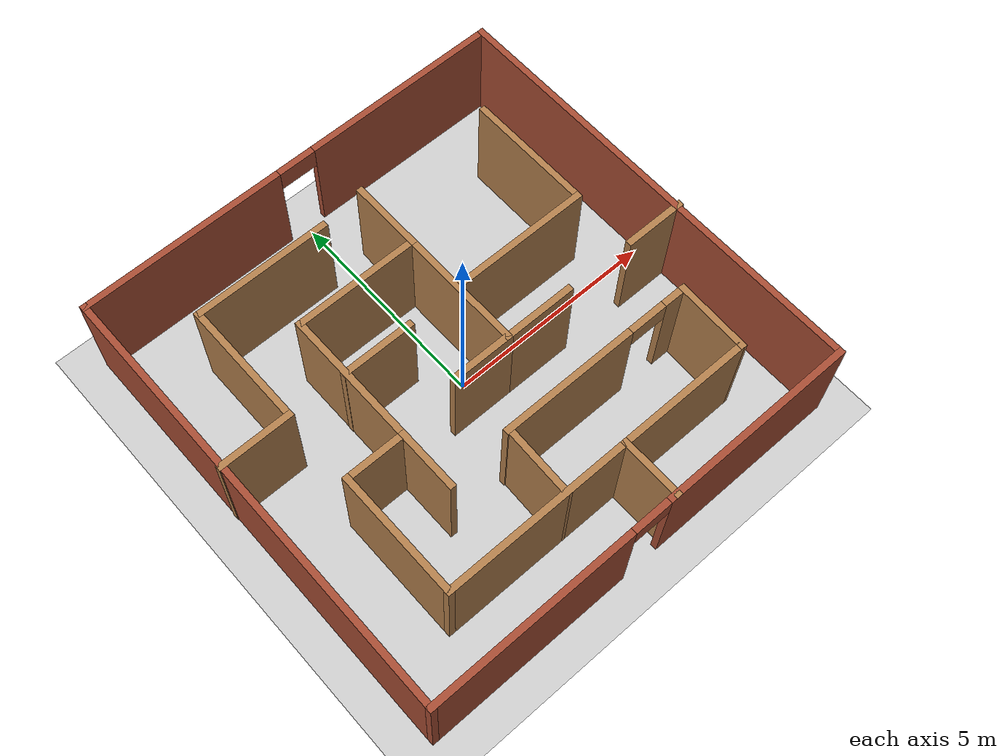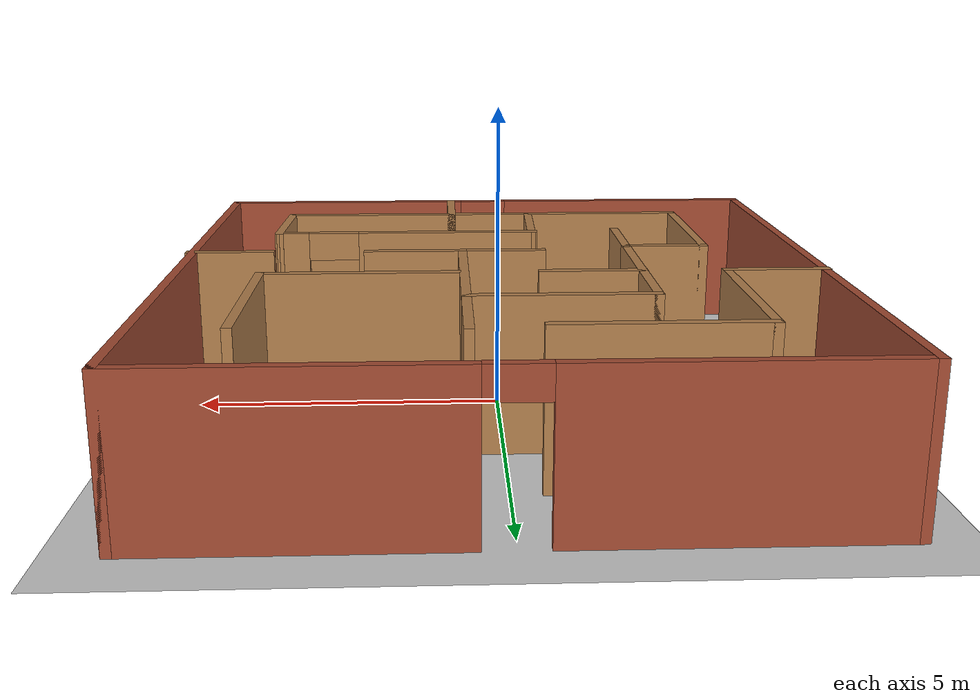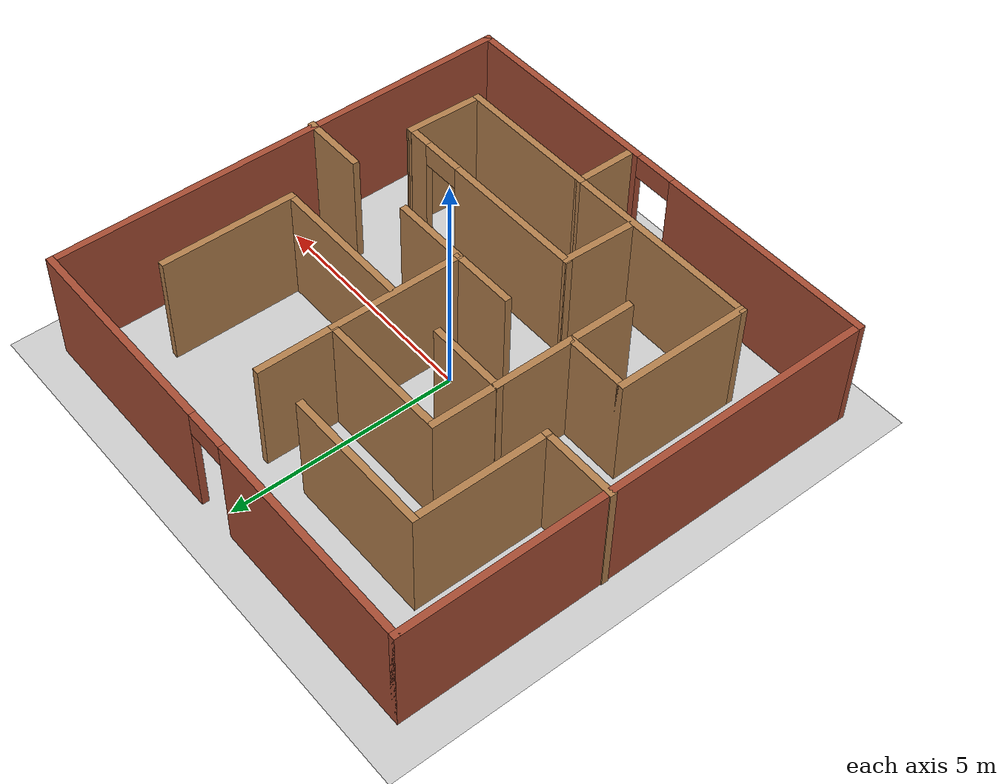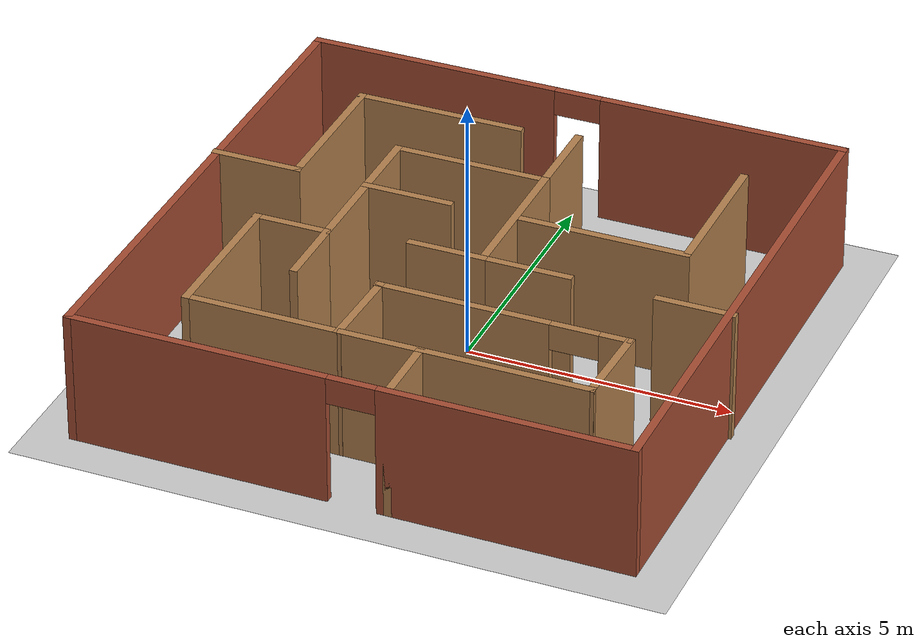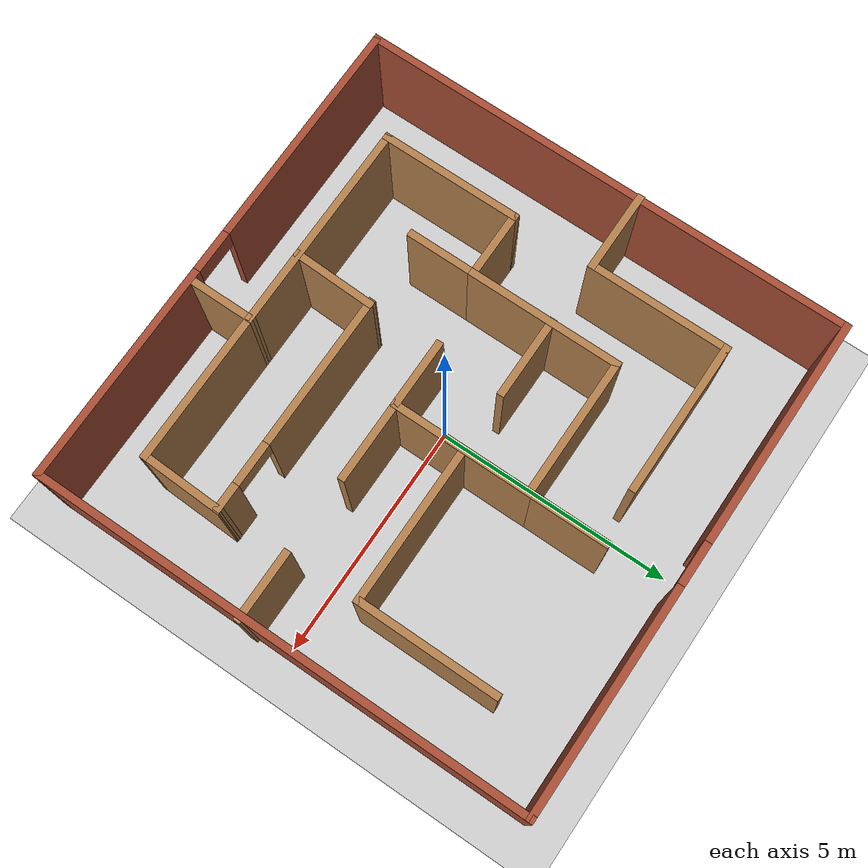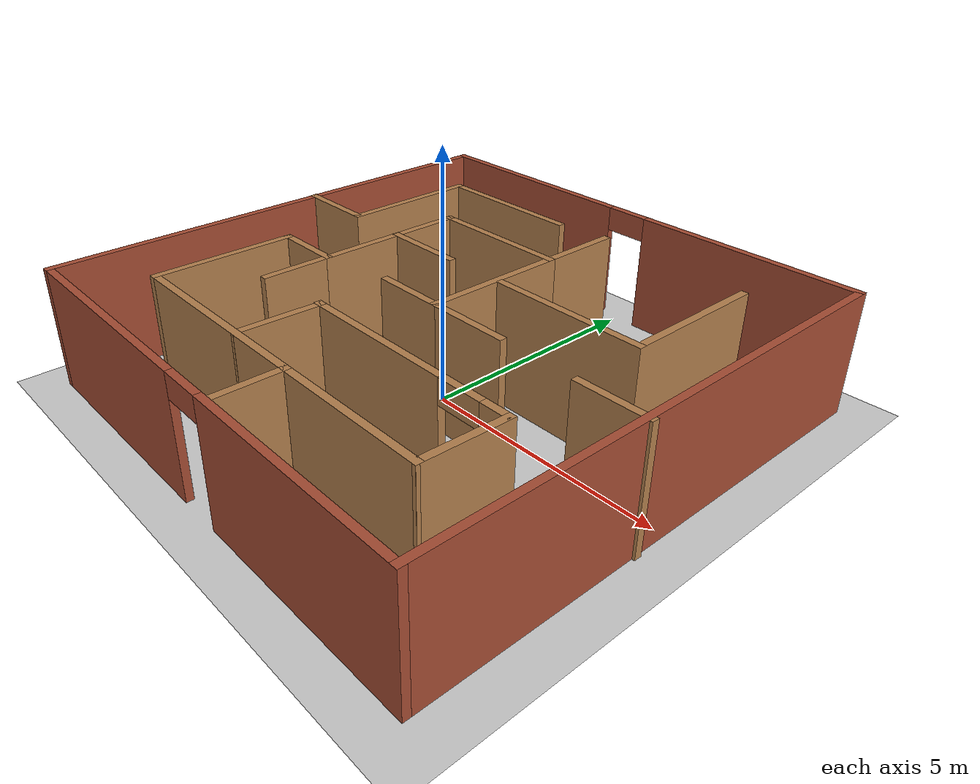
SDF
<sdf version="1.7">
 <world name="default">
  <light name="sun" type="directional">
   <pose>0 0 10 0 -0 0</pose>
   <diffuse>0.8 0.8 0.8 1</diffuse>
   <specular>0.2 0.2 0.2 1</specular>
   <attenuation>
    <range>1000</range>
    <constant>0.9</constant>
    <linear>0.01</linear>
    <quadratic>0.001</quadratic>
   </attenuation>
   <direction>-0.5 0.1 -0.9</direction>
   <spot><inner_angle>0</inner_angle><outer_angle>0</outer_angle><falloff>0</falloff></spot>
  </light>
  <model name="ground_plane">
   <static>1</static>
   <link name="link">
    <collision name="collision">
     <geometry><plane><normal>0 0 1</normal><size>100 100</size></plane></geometry>
     <surface><friction><ode><mu>100</mu><mu2>50</mu2></ode></friction></surface>
    </collision>
    <visual name="visual">
     <cast_shadows>0</cast_shadows>
     <geometry><plane><normal>0 0 1</normal><size>100 100</size></plane></geometry>
     <material>
      <script><uri>file://media/materials/scripts/gazebo.material</uri><name>Gazebo/Grey</name></script>
     </material>
    </visual>
   </link>
  </model>
  <gravity>0 0 -9.8</gravity>
  <magnetic_field>6e-06 2.3e-05 -4.2e-05</magnetic_field>
  <atmosphere type="adiabatic"/>
  <physics type="ode">
   <max_step_size>0.001</max_step_size>
   <real_time_factor>1</real_time_factor>
   <real_time_update_rate>1000</real_time_update_rate>
  </physics>
  <scene><ambient>0.4 0.4 0.4 1</ambient><background>0.7 0.7 0.7 1</background><shadows>1</shadows></scene>
  <audio><device>default</device></audio>
  <spherical_coordinates>
   <surface_model>EARTH_WGS84</surface_model>
   <latitude_deg>0</latitude_deg>
   <longitude_deg>0</longitude_deg>
   <elevation>0</elevation>
   <heading_deg>0</heading_deg>
  </spherical_coordinates>
  <model name="myMaze">
   <pose>-0.018261 0.051252 0 0 -0 0</pose>
   <link name="Wall_10">
    <pose>-0.016524 -5.175 0 0 -0 3.14159</pose>
    <visual name="Wall_10_Visual_0">
     <pose>-2.89914 0 1.25 0 -0 0</pose>
     <geometry><box><size>4.70171 0.15 2.5</size></box></geometry>
     <material>
      <script><uri>file://media/materials/scripts/gazebo.material</uri><name>Gazebo/Bricks</name></script>
      <ambient>1 1 1 1</ambient>
     </material>
     <meta><layer>0</layer></meta>
    </visual>
    <collision name="Wall_10_Collision_0">
     <geometry><box><size>4.70171 0.15 2.5</size></box></geometry>
     <pose>-2.89914 0 1.25 0 -0 0</pose>
    </collision>
    <visual name="Wall_10_Visual_1">
     <pose>2.80086 0 1.25 0 -0 0</pose>
     <geometry><box><size>4.89829 0.15 2.5</size></box></geometry>
     <material>
      <script><uri>file://media/materials/scripts/gazebo.material</uri><name>Gazebo/Bricks</name></script>
      <ambient>1 1 1 1</ambient>
     </material>
     <meta><layer>0</layer></meta>
    </visual>
    <collision name="Wall_10_Collision_1">
     <geometry><box><size>4.89829 0.15 2.5</size></box></geometry>
     <pose>2.80086 0 1.25 0 -0 0</pose>
    </collision>
    <visual name="Wall_10_Visual_2">
     <pose>-0.098287 0 2.25 0 -0 0</pose>
     <geometry><box><size>0.9 0.15 0.5</size></box></geometry>
     <material>
      <script><uri>file://media/materials/scripts/gazebo.material</uri><name>Gazebo/Bricks</name></script>
      <ambient>1 1 1 1</ambient>
     </material>
     <meta><layer>0</layer></meta>
    </visual>
    <collision name="Wall_10_Collision_2">
     <geometry><box><size>0.9 0.15 0.5</size></box></geometry>
     <pose>-0.098287 0 2.25 0 -0 0</pose>
    </collision>
   </link>
   <link name="Wall_11">
    <collision name="Wall_11_Collision">
     <geometry><box><size>10.5 0.15 2.5</size></box></geometry>
     <pose>0 0 1.25 0 -0 0</pose>
    </collision>
    <visual name="Wall_11_Visual">
     <pose>0 0 1.25 0 -0 0</pose>
     <geometry><box><size>10.5 0.15 2.5</size></box></geometry>
     <material>
      <script><uri>file://media/materials/scripts/gazebo.material</uri><name>Gazebo/Bricks</name></script>
      <ambient>1 1 1 1</ambient>
     </material>
     <meta><layer>0</layer></meta>
    </visual>
    <pose>-5.19152 0 0 0 -0 1.5708</pose>
   </link>
   <link name="Wall_12">
    <pose>-0.016524 5.175 0 0 -0 0</pose>
    <visual name="Wall_12_Visual_0">
     <pose>-2.82746 0 1.25 0 -0 0</pose>
     <geometry><box><size>4.84509 0.15 2.5</size></box></geometry>
     <material>
      <script><uri>file://media/materials/scripts/gazebo.material</uri><name>Gazebo/Bricks</name></script>
      <ambient>1 1 1 1</ambient>
     </material>
     <meta><layer>0</layer></meta>
    </visual>
    <collision name="Wall_12_Collision_0">
     <geometry><box><size>4.84509 0.15 2.5</size></box></geometry>
     <pose>-2.82746 0 1.25 0 -0 0</pose>
    </collision>
    <visual name="Wall_12_Visual_1">
     <pose>2.87254 0 1.25 0 -0 0</pose>
     <geometry><box><size>4.75491 0.15 2.5</size></box></geometry>
     <material>
      <script><uri>file://media/materials/scripts/gazebo.material</uri><name>Gazebo/Bricks</name></script>
      <ambient>1 1 1 1</ambient>
     </material>
     <meta><layer>0</layer></meta>
    </visual>
    <collision name="Wall_12_Collision_1">
     <geometry><box><size>4.75491 0.15 2.5</size></box></geometry>
     <pose>2.87254 0 1.25 0 -0 0</pose>
    </collision>
    <visual name="Wall_12_Visual_2">
     <pose>0.045087 0 2.25 0 -0 0</pose>
     <geometry><box><size>0.9 0.15 0.5</size></box></geometry>
     <material>
      <script><uri>file://media/materials/scripts/gazebo.material</uri><name>Gazebo/Bricks</name></script>
      <ambient>1 1 1 1</ambient>
     </material>
     <meta><layer>0</layer></meta>
    </visual>
    <collision name="Wall_12_Collision_2">
     <geometry><box><size>0.9 0.15 0.5</size></box></geometry>
     <pose>0.045087 0 2.25 0 -0 0</pose>
    </collision>
   </link>
   <link name="Wall_13">
    <collision name="Wall_13_Collision">
     <geometry><box><size>10.5 0.15 2.5</size></box></geometry>
     <pose>0 0 1.25 0 -0 0</pose>
    </collision>
    <visual name="Wall_13_Visual">
     <pose>0 0 1.25 0 -0 0</pose>
     <geometry><box><size>10.5 0.15 2.5</size></box></geometry>
     <material>
      <script><uri>file://media/materials/scripts/gazebo.material</uri><name>Gazebo/Bricks</name></script>
      <ambient>1 1 1 1</ambient>
     </material>
     <meta><layer>0</layer></meta>
    </visual>
    <pose>5.15848 0 0 0 -0 -1.5708</pose>
   </link>
   <link name="Wall_15">
    <collision name="Wall_15_Collision">
     <geometry><box><size>1.5 0.15 2.5</size></box></geometry>
     <pose>0 0 1.25 0 -0 0</pose>
    </collision>
    <visual name="Wall_15_Visual">
     <pose>0 0 1.25 0 -0 0</pose>
     <geometry><box><size>1.5 0.15 2.5</size></box></geometry>
     <material>
      <script><uri>file://media/materials/scripts/gazebo.material</uri><name>Gazebo/Wood</name></script>
      <ambient>1 1 1 1</ambient>
     </material>
     <meta><layer>0</layer></meta>
    </visual>
    <pose>0.74053 -4.5 0 0 -0 1.5708</pose>
   </link>
   <link name="Wall_16">
    <collision name="Wall_16_Collision">
     <geometry><box><size>3.25 0.15 2.5</size></box></geometry>
     <pose>0 0 1.25 0 -0 0</pose>
    </collision>
    <visual name="Wall_16_Visual">
     <pose>0 0 1.25 0 -0 0</pose>
     <geometry><box><size>3.25 0.15 2.5</size></box></geometry>
     <material>
      <script><uri>file://media/materials/scripts/gazebo.material</uri><name>Gazebo/Wood</name></script>
      <ambient>1 1 1 1</ambient>
     </material>
     <meta><layer>0</layer></meta>
    </visual>
    <pose>2.29053 -3.825 0 0 -0 0</pose>
   </link>
   <link name="Wall_17">
    <collision name="Wall_17_Collision">
     <geometry><box><size>1.77747 0.15 2.5</size></box></geometry>
     <pose>0 0 1.25 0 -0 0</pose>
    </collision>
    <visual name="Wall_17_Visual">
     <pose>0 0 1.25 0 -0 0</pose>
     <geometry><box><size>1.77747 0.15 2.5</size></box></geometry>
     <material>
      <script><uri>file://media/materials/scripts/gazebo.material</uri><name>Gazebo/Wood</name></script>
      <ambient>1 1 1 1</ambient>
     </material>
     <meta><layer>0</layer></meta>
    </visual>
    <pose>3.86713 -3.0117 0 0 -0 1.5381</pose>
   </link>
   <link name="Wall_18">
    <pose>1.56713 -2.1984 0 0 -0 3.14159</pose>
    <visual name="Wall_18_Visual_0">
     <pose>-2.07963 0 1.25 0 -0 0</pose>
     <geometry><box><size>0.590746 0.15 2.5</size></box></geometry>
     <material>
      <script><uri>file://media/materials/scripts/gazebo.material</uri><name>Gazebo/Wood</name></script>
      <ambient>1 1 1 1</ambient>
     </material>
     <meta><layer>0</layer></meta>
    </visual>
    <collision name="Wall_18_Collision_0">
     <geometry><box><size>0.590746 0.15 2.5</size></box></geometry>
     <pose>-2.07963 0 1.25 0 -0 0</pose>
    </collision>
    <visual name="Wall_18_Visual_1">
     <pose>0.745373 0 1.25 0 -0 0</pose>
     <geometry><box><size>3.25925 0.15 2.5</size></box></geometry>
     <material>
      <script><uri>file://media/materials/scripts/gazebo.material</uri><name>Gazebo/Wood</name></script>
      <ambient>1 1 1 1</ambient>
     </material>
     <meta><layer>0</layer></meta>
    </visual>
    <collision name="Wall_18_Collision_1">
     <geometry><box><size>3.25925 0.15 2.5</size></box></geometry>
     <pose>0.745373 0 1.25 0 -0 0</pose>
    </collision>
    <visual name="Wall_18_Visual_2">
     <pose>-1.33425 0 2.25 0 -0 0</pose>
     <geometry><box><size>0.9 0.15 0.5</size></box></geometry>
     <material>
      <script><uri>file://media/materials/scripts/gazebo.material</uri><name>Gazebo/Wood</name></script>
      <ambient>1 1 1 1</ambient>
     </material>
     <meta><layer>0</layer></meta>
    </visual>
    <collision name="Wall_18_Collision_2">
     <geometry><box><size>0.9 0.15 0.5</size></box></geometry>
     <pose>-1.33425 0 2.25 0 -0 0</pose>
    </collision>
   </link>
   <link name="Wall_20">
    <collision name="Wall_20_Collision">
     <geometry><box><size>4.5 0.15 2.5</size></box></geometry>
     <pose>0 0 1.25 0 -0 0</pose>
    </collision>
    <visual name="Wall_20_Visual">
     <pose>0 0 1.25 0 -0 0</pose>
     <geometry><box><size>4.5 0.15 2.5</size></box></geometry>
     <material>
      <script><uri>file://media/materials/scripts/gazebo.material</uri><name>Gazebo/Wood</name></script>
      <ambient>1 1 1 1</ambient>
     </material>
     <meta><layer>0</layer></meta>
    </visual>
    <pose>-1.43447 -3.825 0 0 -0 3.14159</pose>
   </link>
   <link name="Wall_21">
    <collision name="Wall_21_Collision">
     <geometry><box><size>3 0.15 2.5</size></box></geometry>
     <pose>0 0 1.25 0 -0 0</pose>
    </collision>
    <visual name="Wall_21_Visual">
     <pose>0 0 1.25 0 -0 0</pose>
     <geometry><box><size>3 0.15 2.5</size></box></geometry>
     <material>
      <script><uri>file://media/materials/scripts/gazebo.material</uri><name>Gazebo/Wood</name></script>
      <ambient>1 1 1 1</ambient>
     </material>
     <meta><layer>0</layer></meta>
    </visual>
    <pose>-3.60947 -2.4 0 0 -0 1.5708</pose>
   </link>
   <link name="Wall_22">
    <collision name="Wall_22_Collision">
     <geometry><box><size>1.5 0.15 2.5</size></box></geometry>
     <pose>0 0 1.25 0 -0 0</pose>
    </collision>
    <visual name="Wall_22_Visual">
     <pose>0 0 1.25 0 -0 0</pose>
     <geometry><box><size>1.5 0.15 2.5</size></box></geometry>
     <material>
      <script><uri>file://media/materials/scripts/gazebo.material</uri><name>Gazebo/Wood</name></script>
      <ambient>1 1 1 1</ambient>
     </material>
     <meta><layer>0</layer></meta>
    </visual>
    <pose>-2.93447 -0.975 0 0 -0 0</pose>
   </link>
   <link name="Wall_23">
    <collision name="Wall_23_Collision">
     <geometry><box><size>1.5 0.15 2.5</size></box></geometry>
     <pose>0 0 1.25 0 -0 0</pose>
    </collision>
    <visual name="Wall_23_Visual">
     <pose>0 0 1.25 0 -0 0</pose>
     <geometry><box><size>1.5 0.15 2.5</size></box></geometry>
     <material>
      <script><uri>file://media/materials/scripts/gazebo.material</uri><name>Gazebo/Wood</name></script>
      <ambient>1 1 1 1</ambient>
     </material>
     <meta><layer>0</layer></meta>
    </visual>
    <pose>-2.25947 -1.65 0 0 -0 -1.5708</pose>
   </link>
   <link name="Wall_25">
    <collision name="Wall_25_Collision">
     <geometry><box><size>1.77747 0.15 2.5</size></box></geometry>
     <pose>0 0 1.25 0 -0 0</pose>
    </collision>
    <visual name="Wall_25_Visual">
     <pose>0 0 1.25 0 -0 0</pose>
     <geometry><box><size>1.77747 0.15 2.5</size></box></geometry>
     <material>
      <script><uri>file://media/materials/scripts/gazebo.material</uri><name>Gazebo/Wood</name></script>
      <ambient>1 1 1 1</ambient>
     </material>
     <meta><layer>0</layer></meta>
    </visual>
    <pose>-0.73287 -3.0117 0 0 -0 -1.60349</pose>
   </link>
   <link name="Wall_27">
    <collision name="Wall_27_Collision">
     <geometry><box><size>3.25 0.15 2.5</size></box></geometry>
     <pose>0 0 1.25 0 -0 0</pose>
    </collision>
    <visual name="Wall_27_Visual">
     <pose>0 0 1.25 0 -0 0</pose>
     <geometry><box><size>3.25 0.15 2.5</size></box></geometry>
     <material>
      <script><uri>file://media/materials/scripts/gazebo.material</uri><name>Gazebo/Wood</name></script>
      <ambient>1 1 1 1</ambient>
     </material>
     <meta><layer>0</layer></meta>
    </visual>
    <pose>-2.25947 0.575 0 0 -0 1.5708</pose>
   </link>
   <link name="Wall_28">
    <collision name="Wall_28_Collision">
     <geometry><box><size>3 0.15 2.5</size></box></geometry>
     <pose>0 0 1.25 0 -0 0</pose>
    </collision>
    <visual name="Wall_28_Visual">
     <pose>0 0 1.25 0 -0 0</pose>
     <geometry><box><size>3 0.15 2.5</size></box></geometry>
     <material>
      <script><uri>file://media/materials/scripts/gazebo.material</uri><name>Gazebo/Wood</name></script>
      <ambient>1 1 1 1</ambient>
     </material>
     <meta><layer>0</layer></meta>
    </visual>
    <pose>-0.83447 2.125 0 0 -0 0</pose>
   </link>
   <link name="Wall_29">
    <collision name="Wall_29_Collision">
     <geometry><box><size>1.75 0.15 2.5</size></box></geometry>
     <pose>0 0 1.25 0 -0 0</pose>
    </collision>
    <visual name="Wall_29_Visual">
     <pose>0 0 1.25 0 -0 0</pose>
     <geometry><box><size>1.75 0.15 2.5</size></box></geometry>
     <material>
      <script><uri>file://media/materials/scripts/gazebo.material</uri><name>Gazebo/Wood</name></script>
      <ambient>1 1 1 1</ambient>
     </material>
     <meta><layer>0</layer></meta>
    </visual>
    <pose>0.59053 2.925 0 0 -0 1.5708</pose>
   </link>
   <link name="Wall_31">
    <collision name="Wall_31_Collision">
     <geometry><box><size>3 0.15 2.5</size></box></geometry>
     <pose>0 0 1.25 0 -0 0</pose>
    </collision>
    <visual name="Wall_31_Visual">
     <pose>0 0 1.25 0 -0 0</pose>
     <geometry><box><size>3 0.15 2.5</size></box></geometry>
     <material>
      <script><uri>file://media/materials/scripts/gazebo.material</uri><name>Gazebo/Wood</name></script>
      <ambient>1 1 1 1</ambient>
     </material>
     <meta><layer>0</layer></meta>
    </visual>
    <pose>0.59053 0.7 0 0 -0 -1.5708</pose>
   </link>
   <link name="Wall_32">
    <collision name="Wall_32_Collision">
     <geometry><box><size>1.5 0.15 2.5</size></box></geometry>
     <pose>0 0 1.25 0 -0 0</pose>
    </collision>
    <visual name="Wall_32_Visual">
     <pose>0 0 1.25 0 -0 0</pose>
     <geometry><box><size>1.5 0.15 2.5</size></box></geometry>
     <material>
      <script><uri>file://media/materials/scripts/gazebo.material</uri><name>Gazebo/Wood</name></script>
      <ambient>1 1 1 1</ambient>
     </material>
     <meta><layer>0</layer></meta>
    </visual>
    <pose>-0.08447 -0.725 0 0 -0 3.14159</pose>
   </link>
   <link name="Wall_34">
    <collision name="Wall_34_Collision">
     <geometry><box><size>1.75 0.15 2.5</size></box></geometry>
     <pose>0 0 1.25 0 -0 0</pose>
    </collision>
    <visual name="Wall_34_Visual">
     <pose>0 0 1.25 0 -0 0</pose>
     <geometry><box><size>1.75 0.15 2.5</size></box></geometry>
     <material>
      <script><uri>file://media/materials/scripts/gazebo.material</uri><name>Gazebo/Wood</name></script>
      <ambient>1 1 1 1</ambient>
     </material>
     <meta><layer>0</layer></meta>
    </visual>
    <pose>-1.46645 0.723305 0 0 -0 0</pose>
   </link>
   <link name="Wall_36">
    <collision name="Wall_36_Collision">
     <geometry><box><size>3.25 0.15 2.5</size></box></geometry>
     <pose>0 0 1.25 0 -0 0</pose>
    </collision>
    <visual name="Wall_36_Visual">
     <pose>0 0 1.25 0 -0 0</pose>
     <geometry><box><size>3.25 0.15 2.5</size></box></geometry>
     <material>
      <script><uri>file://media/materials/scripts/gazebo.material</uri><name>Gazebo/Wood</name></script>
      <ambient>1 1 1 1</ambient>
     </material>
     <meta><layer>0</layer></meta>
    </visual>
    <pose>2.2674 0.746436 0 0 -0 0</pose>
   </link>
   <link name="Wall_37">
    <collision name="Wall_37_Collision">
     <geometry><box><size>3 0.15 2.5</size></box></geometry>
     <pose>0 0 1.25 0 -0 0</pose>
    </collision>
    <visual name="Wall_37_Visual">
     <pose>0 0 1.25 0 -0 0</pose>
     <geometry><box><size>3 0.15 2.5</size></box></geometry>
     <material>
      <script><uri>file://media/materials/scripts/gazebo.material</uri><name>Gazebo/Wood</name></script>
      <ambient>1 1 1 1</ambient>
     </material>
     <meta><layer>0</layer></meta>
    </visual>
    <pose>3.8174 2.17144 0 0 -0 1.5708</pose>
   </link>
   <link name="Wall_39">
    <collision name="Wall_39_Collision">
     <geometry><box><size>1.5 0.15 2.5</size></box></geometry>
     <pose>0 0 1.25 0 -0 0</pose>
    </collision>
    <visual name="Wall_39_Visual">
     <pose>0 0 1.25 0 -0 0</pose>
     <geometry><box><size>1.5 0.15 2.5</size></box></geometry>
     <material>
      <script><uri>file://media/materials/scripts/gazebo.material</uri><name>Gazebo/Wood</name></script>
      <ambient>1 1 1 1</ambient>
     </material>
     <meta><layer>0</layer></meta>
    </visual>
    <pose>4.53668 -0.757054 0 0 -0 3.14159</pose>
   </link>
   <link name="Wall_41">
    <collision name="Wall_41_Collision">
     <geometry><box><size>1.75 0.15 2.5</size></box></geometry>
     <pose>0 0 1.25 0 -0 0</pose>
    </collision>
    <visual name="Wall_41_Visual">
     <pose>0 0 1.25 0 -0 0</pose>
     <geometry><box><size>1.75 0.15 2.5</size></box></geometry>
     <material>
      <script><uri>file://media/materials/scripts/gazebo.material</uri><name>Gazebo/Wood</name></script>
      <ambient>1 1 1 1</ambient>
     </material>
     <meta><layer>0</layer></meta>
    </visual>
    <pose>1.39053 -0.725 0 0 -0 0</pose>
   </link>
   <link name="Wall_43">
    <collision name="Wall_43_Collision">
     <geometry><box><size>1.75 0.15 2.5</size></box></geometry>
     <pose>0 0 1.25 0 -0 0</pose>
    </collision>
    <visual name="Wall_43_Visual">
     <pose>0 0 1.25 0 -0 0</pose>
     <geometry><box><size>1.75 0.15 2.5</size></box></geometry>
     <material>
      <script><uri>file://media/materials/scripts/gazebo.material</uri><name>Gazebo/Wood</name></script>
      <ambient>1 1 1 1</ambient>
     </material>
     <meta><layer>0</layer></meta>
    </visual>
    <pose>-4.41168 0.743786 0 0 -0 0</pose>
   </link>
   <link name="Wall_44">
    <collision name="Wall_44_Collision">
     <geometry><box><size>3 0.15 2.5</size></box></geometry>
     <pose>0 0 1.25 0 -0 0</pose>
    </collision>
    <visual name="Wall_44_Visual">
     <pose>0 0 1.25 0 -0 0</pose>
     <geometry><box><size>3 0.15 2.5</size></box></geometry>
     <material>
      <script><uri>file://media/materials/scripts/gazebo.material</uri><name>Gazebo/Wood</name></script>
      <ambient>1 1 1 1</ambient>
     </material>
     <meta><layer>0</layer></meta>
    </visual>
    <pose>-3.61168 2.16879 0 0 -0 1.5708</pose>
   </link>
   <link name="Wall_45">
    <collision name="Wall_45_Collision">
     <geometry><box><size>3.25 0.15 2.5</size></box></geometry>
     <pose>0 0 1.25 0 -0 0</pose>
    </collision>
    <visual name="Wall_45_Visual">
     <pose>0 0 1.25 0 -0 0</pose>
     <geometry><box><size>3.25 0.15 2.5</size></box></geometry>
     <material>
      <script><uri>file://media/materials/scripts/gazebo.material</uri><name>Gazebo/Wood</name></script>
      <ambient>1 1 1 1</ambient>
     </material>
     <meta><layer>0</layer></meta>
    </visual>
    <pose>-2.06168 3.59379 0 0 -0 0</pose>
   </link>
   <static>1</static>
  </model>
 </world>
</sdf>
